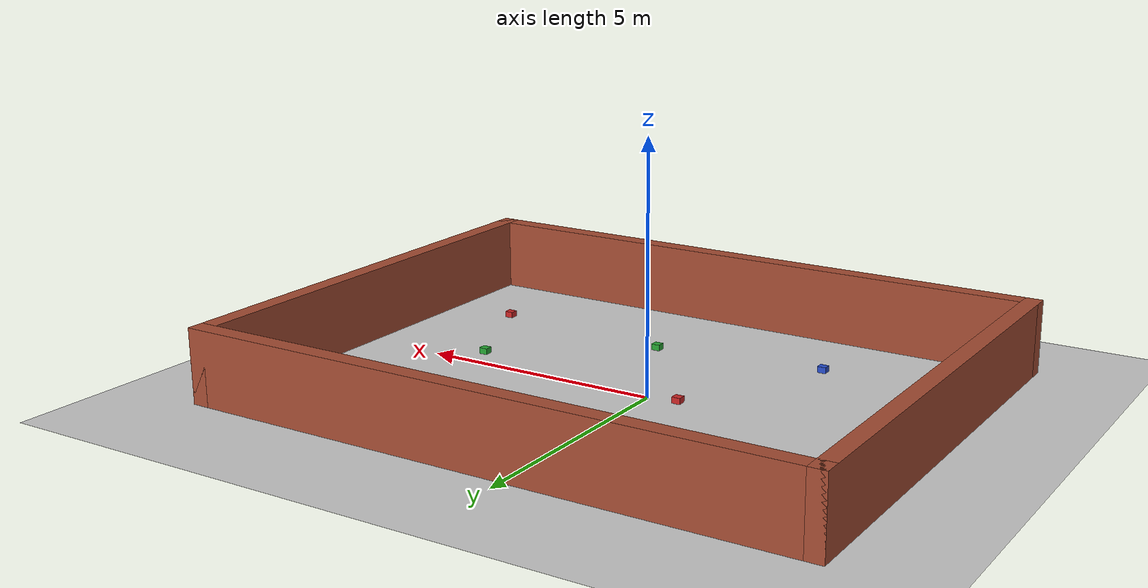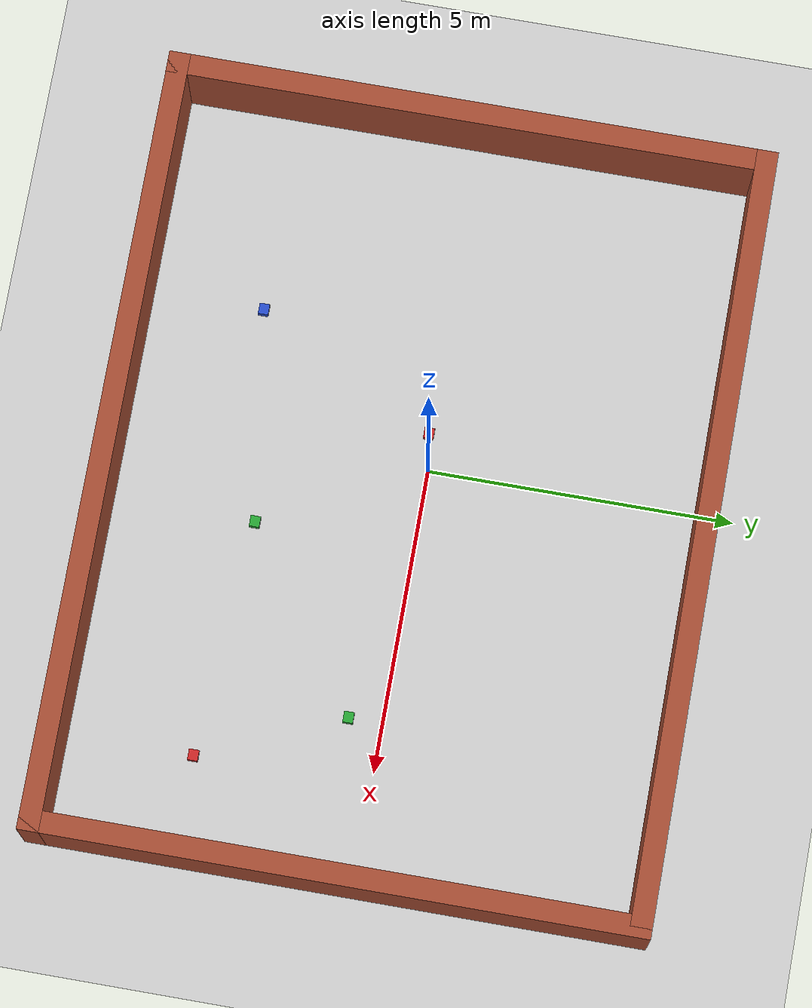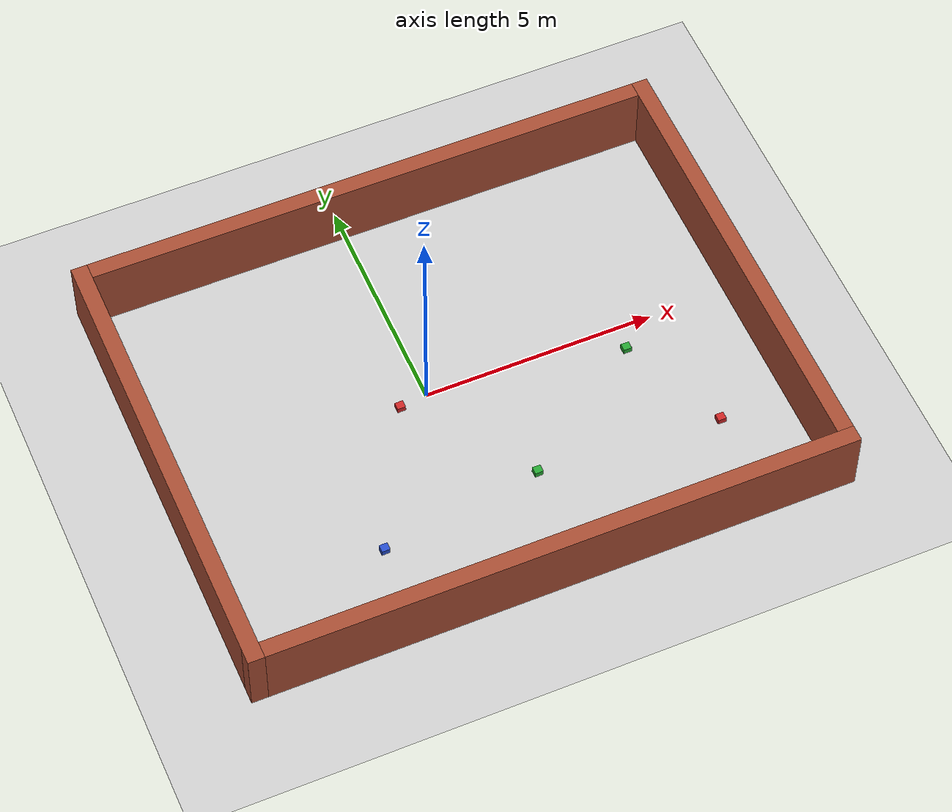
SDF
<sdf version="1.7">
 <world name="default">
  <model name="ground_plane">
   <static>1</static>
   <link name="link">
    <collision name="collision">
     <geometry><plane><normal>0 0 1</normal><size>100 100</size></plane></geometry>
     <surface><friction><ode><mu>100</mu><mu2>50</mu2></ode></friction></surface>
    </collision>
    <visual name="visual">
     <cast_shadows>0</cast_shadows>
     <geometry><plane><normal>0 0 1</normal><size>100 100</size></plane></geometry>
     <material>
      <script><uri>file://media/materials/scripts/gazebo.material</uri><name>Gazebo/Grey</name></script>
     </material>
    </visual>
   </link>
  </model>
  <model name="blue_box_clone_0">
   <link name="link">
    <inertial>
     <mass>1</mass>
     <inertia>
      <ixx>0.166667</ixx>
      <ixy>0</ixy>
      <ixz>0</ixz>
      <iyy>0.166667</iyy>
      <iyz>0</iyz>
      <izz>0.166667</izz>
     </inertia>
    </inertial>
    <visual name="visual">
     <geometry><box><size>0.177426 0.164052 0.124949</size></box></geometry>
     <material>
      <script><name>Gazebo/Blue</name><uri>file://media/materials/scripts/gazebo.material</uri></script>
      <shader type="pixel"><normal_map>__default__</normal_map></shader>
      <ambient>0 0 1 0</ambient>
      <diffuse>0 0 1 0</diffuse>
      <specular>0 0 0.1 0</specular>
      <emissive>0 0 0 1</emissive>
     </material>
    </visual>
    <collision name="collision">
     <geometry><box><size>0.177426 0.164052 0.124949</size></box></geometry>
     <surface>
      <friction>
       <ode><mu>1</mu><mu2>1</mu2><fdir1>0 0 0</fdir1><slip1>0</slip1><slip2>0</slip2></ode>
       <torsional>
        <coefficient>1</coefficient>
        <patch_radius>0</patch_radius>
        <surface_radius>0</surface_radius>
        <use_patch_radius>1</use_patch_radius>
        <ode><slip>0</slip></ode>
       </torsional>
      </friction>
      <bounce><restitution_coefficient>0</restitution_coefficient><threshold>1e+06</threshold></bounce>
      <contact>
       <collide_without_contact>0</collide_without_contact>
       <collide_without_contact_bitmask>1</collide_without_contact_bitmask>
       <collide_bitmask>1</collide_bitmask>
       <ode>
        <soft_cfm>0</soft_cfm>
        <soft_erp>0.2</soft_erp>
        <kp>1e+13</kp>
        <kd>1</kd>
        <max_vel>0.01</max_vel>
        <min_depth>0</min_depth>
       </ode>
       <bullet>
        <split_impulse>1</split_impulse>
        <split_impulse_penetration_threshold>-0.01</split_impulse_penetration_threshold>
        <soft_cfm>0</soft_cfm>
        <soft_erp>0.2</soft_erp>
        <kp>1e+13</kp>
        <kd>1</kd>
       </bullet>
      </contact>
     </surface>
    </collision>
   </link>
   <static>0</static>
   <pose>-2.19496 -3.09781 0.062475 -1e-06 3e-06 -7e-06</pose>
  </model>
  <model name="Green_box_clone_1">
   <link name="link">
    <inertial>
     <mass>1</mass>
     <inertia>
      <ixx>0.166667</ixx>
      <ixy>0</ixy>
      <ixz>0</ixz>
      <iyy>0.166667</iyy>
      <iyz>0</iyz>
      <izz>0.166667</izz>
     </inertia>
    </inertial>
    <visual name="visual">
     <geometry><box><size>0.177426 0.164052 0.124949</size></box></geometry>
     <material>
      <script><name>Gazebo/Green</name><uri>file://media/materials/scripts/gazebo.material</uri></script>
      <shader type="pixel"><normal_map>__default__</normal_map></shader>
      <ambient>1 0 0 1</ambient>
      <diffuse>0 1 0 0</diffuse>
      <specular>0 0.1 0 0</specular>
      <emissive>0 1 0 0</emissive>
     </material>
    </visual>
    <collision name="collision">
     <geometry><box><size>0.177426 0.164052 0.124949</size></box></geometry>
     <surface>
      <friction>
       <ode><mu>1</mu><mu2>1</mu2><fdir1>0 0 0</fdir1><slip1>0</slip1><slip2>0</slip2></ode>
       <torsional>
        <coefficient>1</coefficient>
        <patch_radius>0</patch_radius>
        <surface_radius>0</surface_radius>
        <use_patch_radius>1</use_patch_radius>
        <ode><slip>0</slip></ode>
       </torsional>
      </friction>
      <bounce><restitution_coefficient>0</restitution_coefficient><threshold>1e+06</threshold></bounce>
      <contact>
       <collide_without_contact>0</collide_without_contact>
       <collide_without_contact_bitmask>1</collide_without_contact_bitmask>
       <collide_bitmask>1</collide_bitmask>
       <ode>
        <soft_cfm>0</soft_cfm>
        <soft_erp>0.2</soft_erp>
        <kp>1e+13</kp>
        <kd>1</kd>
        <max_vel>0.01</max_vel>
        <min_depth>0</min_depth>
       </ode>
       <bullet>
        <split_impulse>1</split_impulse>
        <split_impulse_penetration_threshold>-0.01</split_impulse_penetration_threshold>
        <soft_cfm>0</soft_cfm>
        <soft_erp>0.2</soft_erp>
        <kp>1e+13</kp>
        <kd>1</kd>
       </bullet>
      </contact>
     </surface>
    </collision>
   </link>
   <static>0</static>
   <pose>1.31318 -2.60108 0.062475 -3e-06 -1e-06 -9e-06</pose>
  </model>
  <model name="unit_box_1_clone_0_clone_0">
   <link name="link">
    <inertial>
     <mass>1</mass>
     <inertia>
      <ixx>0.166667</ixx>
      <ixy>0</ixy>
      <ixz>0</ixz>
      <iyy>0.166667</iyy>
      <iyz>0</iyz>
      <izz>0.166667</izz>
     </inertia>
    </inertial>
    <visual name="visual">
     <geometry><box><size>0.177426 0.164052 0.124949</size></box></geometry>
     <material>
      <script><name>Gazebo/Red</name><uri>file://media/materials/scripts/gazebo.material</uri></script>
      <shader type="pixel"><normal_map>__default__</normal_map></shader>
      <ambient>1 0 0 1</ambient>
      <diffuse>1 0 0 1</diffuse>
      <specular>0.1 0.1 0.1 1</specular>
      <emissive>0 0 0 1</emissive>
     </material>
    </visual>
    <collision name="collision">
     <geometry><box><size>0.177426 0.164052 0.124949</size></box></geometry>
     <surface>
      <friction>
       <ode><mu>1</mu><mu2>1</mu2><fdir1>0 0 0</fdir1><slip1>0</slip1><slip2>0</slip2></ode>
       <torsional>
        <coefficient>1</coefficient>
        <patch_radius>0</patch_radius>
        <surface_radius>0</surface_radius>
        <use_patch_radius>1</use_patch_radius>
        <ode><slip>0</slip></ode>
       </torsional>
      </friction>
      <bounce><restitution_coefficient>0</restitution_coefficient><threshold>1e+06</threshold></bounce>
      <contact>
       <collide_without_contact>0</collide_without_contact>
       <collide_without_contact_bitmask>1</collide_without_contact_bitmask>
       <collide_bitmask>1</collide_bitmask>
       <ode>
        <soft_cfm>0</soft_cfm>
        <soft_erp>0.2</soft_erp>
        <kp>1e+13</kp>
        <kd>1</kd>
        <max_vel>0.01</max_vel>
        <min_depth>0</min_depth>
       </ode>
       <bullet>
        <split_impulse>1</split_impulse>
        <split_impulse_penetration_threshold>-0.01</split_impulse_penetration_threshold>
        <soft_cfm>0</soft_cfm>
        <soft_erp>0.2</soft_erp>
        <kp>1e+13</kp>
        <kd>1</kd>
       </bullet>
      </contact>
     </surface>
    </collision>
   </link>
   <static>0</static>
   <pose>-0.611664 -0.086415 0.062474 -3e-06 -3e-06 -1.7e-05</pose>
  </model>
  <model name="unit_box_1_clone_1_clone">
   <link name="link">
    <inertial>
     <mass>1</mass>
     <inertia>
      <ixx>0.166667</ixx>
      <ixy>0</ixy>
      <ixz>0</ixz>
      <iyy>0.166667</iyy>
      <iyz>0</iyz>
      <izz>0.166667</izz>
     </inertia>
    </inertial>
    <visual name="visual">
     <geometry><box><size>0.177426 0.164052 0.124949</size></box></geometry>
     <material>
      <script><name>Gazebo/Red</name><uri>file://media/materials/scripts/gazebo.material</uri></script>
      <shader type="pixel"><normal_map>__default__</normal_map></shader>
      <ambient>1 0 0 1</ambient>
      <diffuse>1 0 0 1</diffuse>
      <specular>0.1 0.1 0.1 1</specular>
      <emissive>0 0 0 1</emissive>
     </material>
    </visual>
    <collision name="collision">
     <geometry><box><size>0.177426 0.164052 0.124949</size></box></geometry>
     <surface>
      <friction>
       <ode><mu>1</mu><mu2>1</mu2><fdir1>0 0 0</fdir1><slip1>0</slip1><slip2>0</slip2></ode>
       <torsional>
        <coefficient>1</coefficient>
        <patch_radius>0</patch_radius>
        <surface_radius>0</surface_radius>
        <use_patch_radius>1</use_patch_radius>
        <ode><slip>0</slip></ode>
       </torsional>
      </friction>
      <bounce><restitution_coefficient>0</restitution_coefficient><threshold>1e+06</threshold></bounce>
      <contact>
       <collide_without_contact>0</collide_without_contact>
       <collide_without_contact_bitmask>1</collide_without_contact_bitmask>
       <collide_bitmask>1</collide_bitmask>
       <ode>
        <soft_cfm>0</soft_cfm>
        <soft_erp>0.2</soft_erp>
        <kp>1e+13</kp>
        <kd>1</kd>
        <max_vel>0.01</max_vel>
        <min_depth>0</min_depth>
       </ode>
       <bullet>
        <split_impulse>1</split_impulse>
        <split_impulse_penetration_threshold>-0.01</split_impulse_penetration_threshold>
        <soft_cfm>0</soft_cfm>
        <soft_erp>0.2</soft_erp>
        <kp>1e+13</kp>
        <kd>1</kd>
       </bullet>
      </contact>
     </surface>
    </collision>
   </link>
   <static>0</static>
   <pose>5.22486 -2.88049 0.062475 0 -4e-06 -2.2e-05</pose>
  </model>
  <model name="Green_box_clone_2">
   <link name="link">
    <inertial>
     <mass>1</mass>
     <inertia>
      <ixx>0.166667</ixx>
      <ixy>0</ixy>
      <ixz>0</ixz>
      <iyy>0.166667</iyy>
      <iyz>0</iyz>
      <izz>0.166667</izz>
     </inertia>
    </inertial>
    <visual name="visual">
     <geometry><box><size>0.177426 0.164052 0.124949</size></box></geometry>
     <material>
      <script><name>Gazebo/Green</name><uri>file://media/materials/scripts/gazebo.material</uri></script>
      <shader type="pixel"><normal_map>__default__</normal_map></shader>
      <ambient>1 0 0 1</ambient>
      <diffuse>0 1 0 0</diffuse>
      <specular>0 0.1 0 0</specular>
      <emissive>0 1 0 0</emissive>
     </material>
    </visual>
    <collision name="collision">
     <geometry><box><size>0.177426 0.164052 0.124949</size></box></geometry>
     <surface>
      <friction>
       <ode><mu>1</mu><mu2>1</mu2><fdir1>0 0 0</fdir1><slip1>0</slip1><slip2>0</slip2></ode>
       <torsional>
        <coefficient>1</coefficient>
        <patch_radius>0</patch_radius>
        <surface_radius>0</surface_radius>
        <use_patch_radius>1</use_patch_radius>
        <ode><slip>0</slip></ode>
       </torsional>
      </friction>
      <bounce><restitution_coefficient>0</restitution_coefficient><threshold>1e+06</threshold></bounce>
      <contact>
       <collide_without_contact>0</collide_without_contact>
       <collide_without_contact_bitmask>1</collide_without_contact_bitmask>
       <collide_bitmask>1</collide_bitmask>
       <ode>
        <soft_cfm>0</soft_cfm>
        <soft_erp>0.2</soft_erp>
        <kp>1e+13</kp>
        <kd>1</kd>
        <max_vel>0.01</max_vel>
        <min_depth>0</min_depth>
       </ode>
       <bullet>
        <split_impulse>1</split_impulse>
        <split_impulse_penetration_threshold>-0.01</split_impulse_penetration_threshold>
        <soft_cfm>0</soft_cfm>
        <soft_erp>0.2</soft_erp>
        <kp>1e+13</kp>
        <kd>1</kd>
       </bullet>
      </contact>
     </surface>
    </collision>
   </link>
   <static>0</static>
   <pose>4.20037 -0.552097 0.062475 -4e-06 -0 -1.5e-05</pose>
  </model>
  <model name="wh_1">
   <pose>0.6025 -0.276 0 0 -0 0</pose>
   <link name="Wall_0">
    <collision name="Wall_0_Collision">
     <geometry><box><size>12.8685 0.35 1.5</size></box></geometry>
     <pose>0 0 0.75 0 -0 0</pose>
    </collision>
    <visual name="Wall_0_Visual">
     <pose>0 0 0.75 0 -0 0</pose>
     <geometry><box><size>12.8685 0.35 1.5</size></box></geometry>
     <material>
      <script><uri>file://media/materials/scripts/gazebo.material</uri><name>Gazebo/Bricks</name></script>
      <ambient>1 1 1 1</ambient>
     </material>
     <meta><layer>0</layer></meta>
    </visual>
    <pose>0 4.816 0 0 -0 0</pose>
   </link>
   <link name="Wall_1">
    <collision name="Wall_1_Collision">
     <geometry><box><size>9.982 0.35 1.5</size></box></geometry>
     <pose>0 0 0.75 0 -0 0</pose>
    </collision>
    <visual name="Wall_1_Visual">
     <pose>0 0 0.75 0 -0 0</pose>
     <geometry><box><size>9.982 0.35 1.5</size></box></geometry>
     <material>
      <script><uri>file://media/materials/scripts/gazebo.material</uri><name>Gazebo/Bricks</name></script>
      <ambient>1 1 1 1</ambient>
     </material>
     <meta><layer>0</layer></meta>
    </visual>
    <pose>6.2595 0 0 0 -0 -1.5708</pose>
   </link>
   <link name="Wall_2">
    <collision name="Wall_2_Collision">
     <geometry><box><size>12.8694 0.35 1.5</size></box></geometry>
     <pose>0 0 0.75 0 -0 0</pose>
    </collision>
    <visual name="Wall_2_Visual">
     <pose>0 0 0.75 0 -0 0</pose>
     <geometry><box><size>12.8694 0.35 1.5</size></box></geometry>
     <material>
      <script><uri>file://media/materials/scripts/gazebo.material</uri><name>Gazebo/Bricks</name></script>
      <ambient>1 1 1 1</ambient>
     </material>
     <meta><layer>0</layer></meta>
    </visual>
    <pose>0 -4.816 0 0 -0 3.14159</pose>
   </link>
   <link name="Wall_3">
    <collision name="Wall_3_Collision">
     <geometry><box><size>9.982 0.35 1.5</size></box></geometry>
     <pose>0 0 0.75 0 -0 0</pose>
    </collision>
    <visual name="Wall_3_Visual">
     <pose>0 0 0.75 0 -0 0</pose>
     <geometry><box><size>9.982 0.35 1.5</size></box></geometry>
     <material>
      <script><uri>file://media/materials/scripts/gazebo.material</uri><name>Gazebo/Bricks</name></script>
      <ambient>1 1 1 1</ambient>
     </material>
     <meta><layer>0</layer></meta>
    </visual>
    <pose>-6.2595 0 0 0 -0 1.5708</pose>
   </link>
   <static>1</static>
  </model>
 </world>
</sdf>
